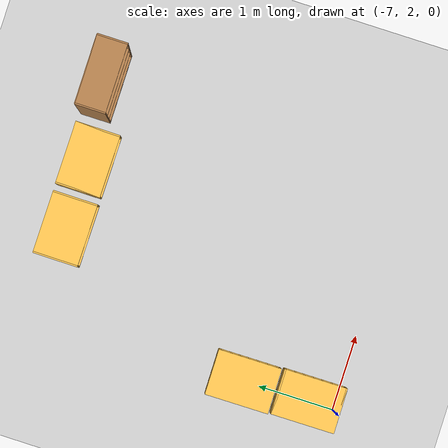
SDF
<sdf version="1.7">
 <world name="default">
  <model name="ground_plane">
   <pose>0 0 0 0 -0 1</pose>
   <static>1</static>
   <link name="link">
    <collision name="collision">
     <geometry><plane><normal>0 0 1</normal><size>100 100</size></plane></geometry>
     <surface>
      <contact><collide_bitmask>65535</collide_bitmask></contact>
      <friction><ode><mu>100</mu><mu2>50</mu2></ode></friction>
     </surface>
    </collision>
    <visual name="visual">
     <cast_shadows>0</cast_shadows>
     <geometry><plane><normal>0 0 1</normal><size>100 100</size></plane></geometry>
     <material>
      <script><uri>file://media/materials/scripts/gazebo.material</uri><name>Gazebo/Grey</name></script>
     </material>
    </visual>
   </link>
  </model>
  <model name="Fridge_Cabinet_33x15">
   <link name="Wall_17">
    <pose>0 0 0.01 0 -0 0</pose>
    <inertial>
     <mass>4.8627</mass>
     <inertia><ixx>0.146</ixx><iyy>0.4318</iyy><izz>0.2861</izz><ixy>0</ixy><ixz>0</ixz><iyz>0</iyz></inertia>
    </inertial>
    <collision name="Wall_17_Collision"><geometry><box><size>0.84 0.6 0.02</size></box></geometry></collision>
    <visual name="Wall_17_Visual">
     <geometry><box><size>0.84 0.6 0.02</size></box></geometry>
     <material>
      <script><uri>file://media/materials/scripts/gazebo.material</uri><name>Gazebo/Grey</name></script>
      <ambient>1 0.764706 0.305882 1</ambient>
     </material>
    </visual>
   </link>
   <joint name="17_21" type="fixed">
    <pose>0.42 0 0 0 -0 0</pose>
    <parent>Wall_21</parent>
    <child>Wall_17</child>
    <axis><xyz>1 0 0</xyz><limit><lower>-1e+16</lower><upper>1e+16</upper></limit></axis>
   </joint>
   <joint name="17_19" type="fixed">
    <pose>-0.42 0 0 0 -0 0</pose>
    <parent>Wall_19</parent>
    <child>Wall_17</child>
    <axis><xyz>1 0 0</xyz><limit><lower>-1e+16</lower><upper>1e+16</upper></limit></axis>
   </joint>
   <joint name="17_25" type="fixed">
    <pose>0 -0.3 0 0 -0 0</pose>
    <parent>Wall_25</parent>
    <child>Wall_17</child>
    <axis><xyz>0 1 0</xyz><limit><lower>-1e+16</lower><upper>1e+16</upper></limit></axis>
   </joint>
   <link name="Wall_19">
    <pose>-0.41 0 0.192 0 -0 0</pose>
    <inertial>
     <mass>2.223</mass>
     <inertia><ixx>0.0668</ixx><iyy>0.094</iyy><izz>0.0274</izz><ixy>0</ixy><ixz>0</ixz><iyz>0</iyz></inertia>
    </inertial>
    <collision name="Wall_19_Collision"><geometry><box><size>0.02 0.6 0.384</size></box></geometry></collision>
    <visual name="Wall_19_Visual">
     <geometry><box><size>0.02 0.6 0.384</size></box></geometry>
     <material>
      <script><uri>file://media/materials/scripts/gazebo.material</uri><name>Gazebo/Grey</name></script>
      <ambient>1 0.764706 0.305882 1</ambient>
     </material>
    </visual>
   </link>
   <link name="Wall_21">
    <pose>0.41 0 0.192 0 -0 0</pose>
    <inertial>
     <mass>2.223</mass>
     <inertia><ixx>0.0668</ixx><iyy>0.094</iyy><izz>0.0274</izz><ixy>0</ixy><ixz>0</ixz><iyz>0</iyz></inertia>
    </inertial>
    <collision name="Wall_21_Collision"><geometry><box><size>0.02 0.6 0.384</size></box></geometry></collision>
    <visual name="Wall_21_Visual">
     <geometry><box><size>0.02 0.6 0.384</size></box></geometry>
     <material>
      <script><uri>file://media/materials/scripts/gazebo.material</uri><name>Gazebo/Grey</name></script>
      <ambient>1 0.764706 0.305882 1</ambient>
     </material>
    </visual>
   </link>
   <link name="Wall_23">
    <pose>0 0 0.374 0 -0 0</pose>
    <inertial>
     <mass>4.8627</mass>
     <inertia><ixx>0.146</ixx><iyy>0.4318</iyy><izz>0.2861</izz><ixy>0</ixy><ixz>0</ixz><iyz>0</iyz></inertia>
    </inertial>
    <collision name="Wall_23_Collision"><geometry><box><size>0.84 0.6 0.02</size></box></geometry></collision>
    <visual name="Wall_23_Visual">
     <geometry><box><size>0.84 0.6 0.02</size></box></geometry>
     <material>
      <script><uri>file://media/materials/scripts/gazebo.material</uri><name>Gazebo/Grey</name></script>
      <ambient>1 0.764706 0.305882 1</ambient>
     </material>
    </visual>
   </link>
   <joint name="23_21" type="fixed">
    <pose>0.42 0 0 0 -0 0</pose>
    <parent>Wall_21</parent>
    <child>Wall_23</child>
    <axis><xyz>0 0 1</xyz><limit><lower>-1e+16</lower><upper>1e+16</upper></limit></axis>
   </joint>
   <joint name="23_19" type="fixed">
    <pose>-0.42 0 0 0 -0 0</pose>
    <parent>Wall_19</parent>
    <child>Wall_23</child>
    <axis><xyz>0 0 1</xyz><limit><lower>-1e+16</lower><upper>1e+16</upper></limit></axis>
   </joint>
   <joint name="23_25" type="fixed">
    <pose>0 -0.3 0 0 -0 0</pose>
    <parent>Wall_25</parent>
    <child>Wall_23</child>
    <axis><xyz>0 0 1</xyz><limit><lower>-1e+16</lower><upper>1e+16</upper></limit></axis>
   </joint>
   <link name="Wall_25">
    <pose>0 -0.29 0.19 0 -0 0</pose>
    <inertial>
     <mass>3.0651</mass>
     <inertia><ixx>0.037</ixx><iyy>0.1786</iyy><izz>0.2154</izz><ixy>0</ixy><ixz>0</ixz><iyz>0</iyz></inertia>
    </inertial>
    <collision name="Wall_25_Collision"><geometry><box><size>0.836 0.02 0.38</size></box></geometry></collision>
    <visual name="Wall_25_Visual">
     <geometry><box><size>0.836 0.02 0.38</size></box></geometry>
     <material>
      <script><uri>file://media/materials/scripts/gazebo.material</uri><name>Gazebo/Grey</name></script>
      <ambient>1 0.764706 0.305882 1</ambient>
     </material>
    </visual>
   </link>
   <joint name="25_21" type="fixed">
    <pose>0.42 0 0 0 -0 0</pose>
    <parent>Wall_21</parent>
    <child>Wall_25</child>
    <axis><xyz>0 1 0</xyz><limit><lower>-1e+16</lower><upper>1e+16</upper></limit></axis>
   </joint>
   <joint name="25_19" type="fixed">
    <pose>-0.42 0 0 0 -0 0</pose>
    <parent>Wall_19</parent>
    <child>Wall_25</child>
    <axis><xyz>0 1 0</xyz><limit><lower>-1e+16</lower><upper>1e+16</upper></limit></axis>
   </joint>
   <static>1</static>
   <pose>-6.96819 2.35258 0 0 0 -1.56459</pose>
  </model>
  <model name="Fridge_Cabinet_33x15_clone">
   <link name="Wall_17">
    <pose>0 0 0.01 0 -0 0</pose>
    <inertial>
     <mass>4.8627</mass>
     <inertia><ixx>0.146</ixx><iyy>0.4318</iyy><izz>0.2861</izz><ixy>0</ixy><ixz>0</ixz><iyz>0</iyz></inertia>
    </inertial>
    <collision name="Wall_17_Collision"><geometry><box><size>0.84 0.6 0.02</size></box></geometry></collision>
    <visual name="Wall_17_Visual">
     <geometry><box><size>0.84 0.6 0.02</size></box></geometry>
     <material>
      <script><uri>file://media/materials/scripts/gazebo.material</uri><name>Gazebo/Grey</name></script>
      <ambient>1 0.764706 0.305882 1</ambient>
     </material>
    </visual>
   </link>
   <joint name="17_21" type="fixed">
    <pose>0.42 0 0 0 -0 0</pose>
    <parent>Wall_21</parent>
    <child>Wall_17</child>
    <axis><xyz>1 0 0</xyz><limit><lower>-1e+16</lower><upper>1e+16</upper></limit></axis>
   </joint>
   <joint name="17_19" type="fixed">
    <pose>-0.42 0 0 0 -0 0</pose>
    <parent>Wall_19</parent>
    <child>Wall_17</child>
    <axis><xyz>1 0 0</xyz><limit><lower>-1e+16</lower><upper>1e+16</upper></limit></axis>
   </joint>
   <joint name="17_25" type="fixed">
    <pose>0 -0.3 0 0 -0 0</pose>
    <parent>Wall_25</parent>
    <child>Wall_17</child>
    <axis><xyz>0 1 0</xyz><limit><lower>-1e+16</lower><upper>1e+16</upper></limit></axis>
   </joint>
   <link name="Wall_19">
    <pose>-0.41 0 0.192 0 -0 0</pose>
    <inertial>
     <mass>2.223</mass>
     <inertia><ixx>0.0668</ixx><iyy>0.094</iyy><izz>0.0274</izz><ixy>0</ixy><ixz>0</ixz><iyz>0</iyz></inertia>
    </inertial>
    <collision name="Wall_19_Collision"><geometry><box><size>0.02 0.6 0.384</size></box></geometry></collision>
    <visual name="Wall_19_Visual">
     <geometry><box><size>0.02 0.6 0.384</size></box></geometry>
     <material>
      <script><uri>file://media/materials/scripts/gazebo.material</uri><name>Gazebo/Grey</name></script>
      <ambient>1 0.764706 0.305882 1</ambient>
     </material>
    </visual>
   </link>
   <link name="Wall_21">
    <pose>0.41 0 0.192 0 -0 0</pose>
    <inertial>
     <mass>2.223</mass>
     <inertia><ixx>0.0668</ixx><iyy>0.094</iyy><izz>0.0274</izz><ixy>0</ixy><ixz>0</ixz><iyz>0</iyz></inertia>
    </inertial>
    <collision name="Wall_21_Collision"><geometry><box><size>0.02 0.6 0.384</size></box></geometry></collision>
    <visual name="Wall_21_Visual">
     <geometry><box><size>0.02 0.6 0.384</size></box></geometry>
     <material>
      <script><uri>file://media/materials/scripts/gazebo.material</uri><name>Gazebo/Grey</name></script>
      <ambient>1 0.764706 0.305882 1</ambient>
     </material>
    </visual>
   </link>
   <link name="Wall_23">
    <pose>0 0 0.374 0 -0 0</pose>
    <inertial>
     <mass>4.8627</mass>
     <inertia><ixx>0.146</ixx><iyy>0.4318</iyy><izz>0.2861</izz><ixy>0</ixy><ixz>0</ixz><iyz>0</iyz></inertia>
    </inertial>
    <collision name="Wall_23_Collision"><geometry><box><size>0.84 0.6 0.02</size></box></geometry></collision>
    <visual name="Wall_23_Visual">
     <geometry><box><size>0.84 0.6 0.02</size></box></geometry>
     <material>
      <script><uri>file://media/materials/scripts/gazebo.material</uri><name>Gazebo/Grey</name></script>
      <ambient>1 0.764706 0.305882 1</ambient>
     </material>
    </visual>
   </link>
   <joint name="23_21" type="fixed">
    <pose>0.42 0 0 0 -0 0</pose>
    <parent>Wall_21</parent>
    <child>Wall_23</child>
    <axis><xyz>0 0 1</xyz><limit><lower>-1e+16</lower><upper>1e+16</upper></limit></axis>
   </joint>
   <joint name="23_19" type="fixed">
    <pose>-0.42 0 0 0 -0 0</pose>
    <parent>Wall_19</parent>
    <child>Wall_23</child>
    <axis><xyz>0 0 1</xyz><limit><lower>-1e+16</lower><upper>1e+16</upper></limit></axis>
   </joint>
   <joint name="23_25" type="fixed">
    <pose>0 -0.3 0 0 -0 0</pose>
    <parent>Wall_25</parent>
    <child>Wall_23</child>
    <axis><xyz>0 0 1</xyz><limit><lower>-1e+16</lower><upper>1e+16</upper></limit></axis>
   </joint>
   <link name="Wall_25">
    <pose>0 -0.29 0.19 0 -0 0</pose>
    <inertial>
     <mass>3.0651</mass>
     <inertia><ixx>0.037</ixx><iyy>0.1786</iyy><izz>0.2154</izz><ixy>0</ixy><ixz>0</ixz><iyz>0</iyz></inertia>
    </inertial>
    <collision name="Wall_25_Collision"><geometry><box><size>0.836 0.02 0.38</size></box></geometry></collision>
    <visual name="Wall_25_Visual">
     <geometry><box><size>0.836 0.02 0.38</size></box></geometry>
     <material>
      <script><uri>file://media/materials/scripts/gazebo.material</uri><name>Gazebo/Grey</name></script>
      <ambient>1 0.764706 0.305882 1</ambient>
     </material>
    </visual>
   </link>
   <joint name="25_21" type="fixed">
    <pose>0.42 0 0 0 -0 0</pose>
    <parent>Wall_21</parent>
    <child>Wall_25</child>
    <axis><xyz>0 1 0</xyz><limit><lower>-1e+16</lower><upper>1e+16</upper></limit></axis>
   </joint>
   <joint name="25_19" type="fixed">
    <pose>-0.42 0 0 0 -0 0</pose>
    <parent>Wall_19</parent>
    <child>Wall_25</child>
    <axis><xyz>0 1 0</xyz><limit><lower>-1e+16</lower><upper>1e+16</upper></limit></axis>
   </joint>
   <static>1</static>
   <pose>-6.98599 3.22667 0 0 0 -1.56459</pose>
  </model>
  <model name="Fridge_Cabinet_33x15_clone_0">
   <link name="Wall_17">
    <pose>0 0 0.01 0 -0 0</pose>
    <inertial>
     <mass>4.8627</mass>
     <inertia><ixx>0.146</ixx><iyy>0.4318</iyy><izz>0.2861</izz><ixy>0</ixy><ixz>0</ixz><iyz>0</iyz></inertia>
    </inertial>
    <collision name="Wall_17_Collision"><geometry><box><size>0.84 0.6 0.02</size></box></geometry></collision>
    <visual name="Wall_17_Visual">
     <geometry><box><size>0.84 0.6 0.02</size></box></geometry>
     <material>
      <script><uri>file://media/materials/scripts/gazebo.material</uri><name>Gazebo/Grey</name></script>
      <ambient>1 0.764706 0.305882 1</ambient>
     </material>
    </visual>
   </link>
   <joint name="17_21" type="fixed">
    <pose>0.42 0 0 0 -0 0</pose>
    <parent>Wall_21</parent>
    <child>Wall_17</child>
    <axis><xyz>1 0 0</xyz><limit><lower>-1e+16</lower><upper>1e+16</upper></limit></axis>
   </joint>
   <joint name="17_19" type="fixed">
    <pose>-0.42 0 0 0 -0 0</pose>
    <parent>Wall_19</parent>
    <child>Wall_17</child>
    <axis><xyz>1 0 0</xyz><limit><lower>-1e+16</lower><upper>1e+16</upper></limit></axis>
   </joint>
   <joint name="17_25" type="fixed">
    <pose>0 -0.3 0 0 -0 0</pose>
    <parent>Wall_25</parent>
    <child>Wall_17</child>
    <axis><xyz>0 1 0</xyz><limit><lower>-1e+16</lower><upper>1e+16</upper></limit></axis>
   </joint>
   <link name="Wall_19">
    <pose>-0.41 0 0.192 0 -0 0</pose>
    <inertial>
     <mass>2.223</mass>
     <inertia><ixx>0.0668</ixx><iyy>0.094</iyy><izz>0.0274</izz><ixy>0</ixy><ixz>0</ixz><iyz>0</iyz></inertia>
    </inertial>
    <collision name="Wall_19_Collision"><geometry><box><size>0.02 0.6 0.384</size></box></geometry></collision>
    <visual name="Wall_19_Visual">
     <geometry><box><size>0.02 0.6 0.384</size></box></geometry>
     <material>
      <script><uri>file://media/materials/scripts/gazebo.material</uri><name>Gazebo/Grey</name></script>
      <ambient>1 0.764706 0.305882 1</ambient>
     </material>
    </visual>
   </link>
   <link name="Wall_21">
    <pose>0.41 0 0.192 0 -0 0</pose>
    <inertial>
     <mass>2.223</mass>
     <inertia><ixx>0.0668</ixx><iyy>0.094</iyy><izz>0.0274</izz><ixy>0</ixy><ixz>0</ixz><iyz>0</iyz></inertia>
    </inertial>
    <collision name="Wall_21_Collision"><geometry><box><size>0.02 0.6 0.384</size></box></geometry></collision>
    <visual name="Wall_21_Visual">
     <geometry><box><size>0.02 0.6 0.384</size></box></geometry>
     <material>
      <script><uri>file://media/materials/scripts/gazebo.material</uri><name>Gazebo/Grey</name></script>
      <ambient>1 0.764706 0.305882 1</ambient>
     </material>
    </visual>
   </link>
   <link name="Wall_23">
    <pose>0 0 0.374 0 -0 0</pose>
    <inertial>
     <mass>4.8627</mass>
     <inertia><ixx>0.146</ixx><iyy>0.4318</iyy><izz>0.2861</izz><ixy>0</ixy><ixz>0</ixz><iyz>0</iyz></inertia>
    </inertial>
    <collision name="Wall_23_Collision"><geometry><box><size>0.84 0.6 0.02</size></box></geometry></collision>
    <visual name="Wall_23_Visual">
     <geometry><box><size>0.84 0.6 0.02</size></box></geometry>
     <material>
      <script><uri>file://media/materials/scripts/gazebo.material</uri><name>Gazebo/Grey</name></script>
      <ambient>1 0.764706 0.305882 1</ambient>
     </material>
    </visual>
   </link>
   <joint name="23_21" type="fixed">
    <pose>0.42 0 0 0 -0 0</pose>
    <parent>Wall_21</parent>
    <child>Wall_23</child>
    <axis><xyz>0 0 1</xyz><limit><lower>-1e+16</lower><upper>1e+16</upper></limit></axis>
   </joint>
   <joint name="23_19" type="fixed">
    <pose>-0.42 0 0 0 -0 0</pose>
    <parent>Wall_19</parent>
    <child>Wall_23</child>
    <axis><xyz>0 0 1</xyz><limit><lower>-1e+16</lower><upper>1e+16</upper></limit></axis>
   </joint>
   <joint name="23_25" type="fixed">
    <pose>0 -0.3 0 0 -0 0</pose>
    <parent>Wall_25</parent>
    <child>Wall_23</child>
    <axis><xyz>0 0 1</xyz><limit><lower>-1e+16</lower><upper>1e+16</upper></limit></axis>
   </joint>
   <link name="Wall_25">
    <pose>0 -0.29 0.19 0 -0 0</pose>
    <inertial>
     <mass>3.0651</mass>
     <inertia><ixx>0.037</ixx><iyy>0.1786</iyy><izz>0.2154</izz><ixy>0</ixy><ixz>0</ixz><iyz>0</iyz></inertia>
    </inertial>
    <collision name="Wall_25_Collision"><geometry><box><size>0.836 0.02 0.38</size></box></geometry></collision>
    <visual name="Wall_25_Visual">
     <geometry><box><size>0.836 0.02 0.38</size></box></geometry>
     <material>
      <script><uri>file://media/materials/scripts/gazebo.material</uri><name>Gazebo/Grey</name></script>
      <ambient>1 0.764706 0.305882 1</ambient>
     </material>
    </visual>
   </link>
   <joint name="25_21" type="fixed">
    <pose>0.42 0 0 0 -0 0</pose>
    <parent>Wall_21</parent>
    <child>Wall_25</child>
    <axis><xyz>0 1 0</xyz><limit><lower>-1e+16</lower><upper>1e+16</upper></limit></axis>
   </joint>
   <joint name="25_19" type="fixed">
    <pose>-0.42 0 0 0 -0 0</pose>
    <parent>Wall_19</parent>
    <child>Wall_25</child>
    <axis><xyz>0 1 0</xyz><limit><lower>-1e+16</lower><upper>1e+16</upper></limit></axis>
   </joint>
   <static>1</static>
   <pose>-5.82805 5.98325 -0.002918 0 -0 3.13541</pose>
  </model>
  <model name="Fridge_Cabinet_33x15_clone_0_clone">
   <link name="Wall_17">
    <pose>0 0 0.01 0 -0 0</pose>
    <inertial>
     <mass>4.8627</mass>
     <inertia><ixx>0.146</ixx><iyy>0.4318</iyy><izz>0.2861</izz><ixy>0</ixy><ixz>0</ixz><iyz>0</iyz></inertia>
    </inertial>
    <collision name="Wall_17_Collision"><geometry><box><size>0.84 0.6 0.02</size></box></geometry></collision>
    <visual name="Wall_17_Visual">
     <geometry><box><size>0.84 0.6 0.02</size></box></geometry>
     <material>
      <script><uri>file://media/materials/scripts/gazebo.material</uri><name>Gazebo/Grey</name></script>
      <ambient>1 0.764706 0.305882 1</ambient>
     </material>
    </visual>
   </link>
   <joint name="17_21" type="fixed">
    <pose>0.42 0 0 0 -0 0</pose>
    <parent>Wall_21</parent>
    <child>Wall_17</child>
    <axis><xyz>1 0 0</xyz><limit><lower>-1e+16</lower><upper>1e+16</upper></limit></axis>
   </joint>
   <joint name="17_19" type="fixed">
    <pose>-0.42 0 0 0 -0 0</pose>
    <parent>Wall_19</parent>
    <child>Wall_17</child>
    <axis><xyz>1 0 0</xyz><limit><lower>-1e+16</lower><upper>1e+16</upper></limit></axis>
   </joint>
   <joint name="17_25" type="fixed">
    <pose>0 -0.3 0 0 -0 0</pose>
    <parent>Wall_25</parent>
    <child>Wall_17</child>
    <axis><xyz>0 1 0</xyz><limit><lower>-1e+16</lower><upper>1e+16</upper></limit></axis>
   </joint>
   <link name="Wall_19">
    <pose>-0.41 0 0.192 0 -0 0</pose>
    <inertial>
     <mass>2.223</mass>
     <inertia><ixx>0.0668</ixx><iyy>0.094</iyy><izz>0.0274</izz><ixy>0</ixy><ixz>0</ixz><iyz>0</iyz></inertia>
    </inertial>
    <collision name="Wall_19_Collision"><geometry><box><size>0.02 0.6 0.384</size></box></geometry></collision>
    <visual name="Wall_19_Visual">
     <geometry><box><size>0.02 0.6 0.384</size></box></geometry>
     <material>
      <script><uri>file://media/materials/scripts/gazebo.material</uri><name>Gazebo/Grey</name></script>
      <ambient>1 0.764706 0.305882 1</ambient>
     </material>
    </visual>
   </link>
   <link name="Wall_21">
    <pose>0.41 0 0.192 0 -0 0</pose>
    <inertial>
     <mass>2.223</mass>
     <inertia><ixx>0.0668</ixx><iyy>0.094</iyy><izz>0.0274</izz><ixy>0</ixy><ixz>0</ixz><iyz>0</iyz></inertia>
    </inertial>
    <collision name="Wall_21_Collision"><geometry><box><size>0.02 0.6 0.384</size></box></geometry></collision>
    <visual name="Wall_21_Visual">
     <geometry><box><size>0.02 0.6 0.384</size></box></geometry>
     <material>
      <script><uri>file://media/materials/scripts/gazebo.material</uri><name>Gazebo/Grey</name></script>
      <ambient>1 0.764706 0.305882 1</ambient>
     </material>
    </visual>
   </link>
   <link name="Wall_23">
    <pose>0 0 0.374 0 -0 0</pose>
    <inertial>
     <mass>4.8627</mass>
     <inertia><ixx>0.146</ixx><iyy>0.4318</iyy><izz>0.2861</izz><ixy>0</ixy><ixz>0</ixz><iyz>0</iyz></inertia>
    </inertial>
    <collision name="Wall_23_Collision"><geometry><box><size>0.84 0.6 0.02</size></box></geometry></collision>
    <visual name="Wall_23_Visual">
     <geometry><box><size>0.84 0.6 0.02</size></box></geometry>
     <material>
      <script><uri>file://media/materials/scripts/gazebo.material</uri><name>Gazebo/Grey</name></script>
      <ambient>1 0.764706 0.305882 1</ambient>
     </material>
    </visual>
   </link>
   <joint name="23_21" type="fixed">
    <pose>0.42 0 0 0 -0 0</pose>
    <parent>Wall_21</parent>
    <child>Wall_23</child>
    <axis><xyz>0 0 1</xyz><limit><lower>-1e+16</lower><upper>1e+16</upper></limit></axis>
   </joint>
   <joint name="23_19" type="fixed">
    <pose>-0.42 0 0 0 -0 0</pose>
    <parent>Wall_19</parent>
    <child>Wall_23</child>
    <axis><xyz>0 0 1</xyz><limit><lower>-1e+16</lower><upper>1e+16</upper></limit></axis>
   </joint>
   <joint name="23_25" type="fixed">
    <pose>0 -0.3 0 0 -0 0</pose>
    <parent>Wall_25</parent>
    <child>Wall_23</child>
    <axis><xyz>0 0 1</xyz><limit><lower>-1e+16</lower><upper>1e+16</upper></limit></axis>
   </joint>
   <link name="Wall_25">
    <pose>0 -0.29 0.19 0 -0 0</pose>
    <inertial>
     <mass>3.0651</mass>
     <inertia><ixx>0.037</ixx><iyy>0.1786</iyy><izz>0.2154</izz><ixy>0</ixy><ixz>0</ixz><iyz>0</iyz></inertia>
    </inertial>
    <collision name="Wall_25_Collision"><geometry><box><size>0.836 0.02 0.38</size></box></geometry></collision>
    <visual name="Wall_25_Visual">
     <geometry><box><size>0.836 0.02 0.38</size></box></geometry>
     <material>
      <script><uri>file://media/materials/scripts/gazebo.material</uri><name>Gazebo/Grey</name></script>
      <ambient>1 0.764706 0.305882 1</ambient>
     </material>
    </visual>
   </link>
   <joint name="25_21" type="fixed">
    <pose>0.42 0 0 0 -0 0</pose>
    <parent>Wall_21</parent>
    <child>Wall_25</child>
    <axis><xyz>0 1 0</xyz><limit><lower>-1e+16</lower><upper>1e+16</upper></limit></axis>
   </joint>
   <joint name="25_19" type="fixed">
    <pose>-0.42 0 0 0 -0 0</pose>
    <parent>Wall_19</parent>
    <child>Wall_25</child>
    <axis><xyz>0 1 0</xyz><limit><lower>-1e+16</lower><upper>1e+16</upper></limit></axis>
   </joint>
   <static>1</static>
   <pose>-4.89868 5.98228 -0 0 -0 3.13541</pose>
  </model>
  <model name="bookshelf">
   <static>1</static>
   <link name="link">
    <inertial><mass>1</mass></inertial>
    <collision name="back">
     <pose>0 0.005 0.6 0 -0 0</pose>
     <geometry><box><size>0.9 0.01 1.2</size></box></geometry>
    </collision>
    <visual name="visual1">
     <pose>0 0.005 0.6 0 -0 0</pose>
     <geometry><box><size>0.9 0.01 1.2</size></box></geometry>
     <material>
      <script><uri>file://media/materials/scripts/gazebo.material</uri><name>Gazebo/Wood</name></script>
     </material>
    </visual>
    <collision name="left_side">
     <pose>0.45 -0.195 0.6 0 -0 0</pose>
     <geometry><box><size>0.02 0.4 1.2</size></box></geometry>
    </collision>
    <visual name="visual2">
     <pose>0.45 -0.195 0.6 0 -0 0</pose>
     <geometry><box><size>0.02 0.4 1.2</size></box></geometry>
     <material>
      <script><uri>file://media/materials/scripts/gazebo.material</uri><name>Gazebo/Wood</name></script>
     </material>
    </visual>
    <collision name="right_side">
     <pose>-0.45 -0.195 0.6 0 -0 0</pose>
     <geometry><box><size>0.02 0.4 1.2</size></box></geometry>
    </collision>
    <visual name="visual3">
     <pose>-0.45 -0.195 0.6 0 -0 0</pose>
     <geometry><box><size>0.02 0.4 1.2</size></box></geometry>
     <material>
      <script><uri>file://media/materials/scripts/gazebo.material</uri><name>Gazebo/Wood</name></script>
     </material>
    </visual>
    <collision name="bottom">
     <pose>0 -0.195 0.03 0 -0 0</pose>
     <geometry><box><size>0.88 0.4 0.06</size></box></geometry>
    </collision>
    <visual name="visual4">
     <pose>0 -0.195 0.03 0 -0 0</pose>
     <geometry><box><size>0.88 0.4 0.06</size></box></geometry>
     <material>
      <script><uri>file://media/materials/scripts/gazebo.material</uri><name>Gazebo/Wood</name></script>
     </material>
    </visual>
    <collision name="top">
     <pose>0 -0.195 1.19 0 -0 0</pose>
     <geometry><box><size>0.88 0.4 0.02</size></box></geometry>
    </collision>
    <visual name="visual5">
     <pose>0 -0.195 1.19 0 -0 0</pose>
     <geometry><box><size>0.88 0.4 0.02</size></box></geometry>
     <material>
      <script><uri>file://media/materials/scripts/gazebo.material</uri><name>Gazebo/Wood</name></script>
     </material>
    </visual>
    <collision name="low_shelf">
     <pose>0 -0.195 0.43 0 -0 0</pose>
     <geometry><box><size>0.88 0.4 0.02</size></box></geometry>
    </collision>
    <visual name="visual6">
     <pose>0 -0.195 0.43 0 -0 0</pose>
     <geometry><box><size>0.88 0.4 0.02</size></box></geometry>
     <material>
      <script><uri>file://media/materials/scripts/gazebo.material</uri><name>Gazebo/Wood</name></script>
     </material>
    </visual>
    <collision name="high_shelf">
     <pose>0 -0.195 0.8 0 -0 0</pose>
     <geometry><box><size>0.88 0.4 0.02</size></box></geometry>
    </collision>
    <visual name="visual7">
     <pose>0 -0.195 0.8 0 -0 0</pose>
     <geometry><box><size>0.88 0.4 0.02</size></box></geometry>
     <material>
      <script><uri>file://media/materials/scripts/gazebo.material</uri><name>Gazebo/Wood</name></script>
     </material>
    </visual>
   </link>
   <pose>-3.8847 6.27381 0 0 -0 0</pose>
  </model>
 </world>
</sdf>
